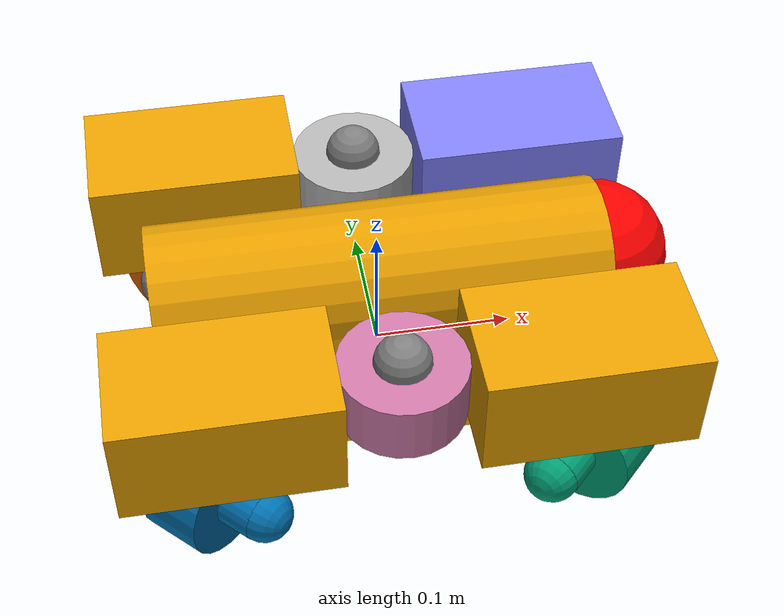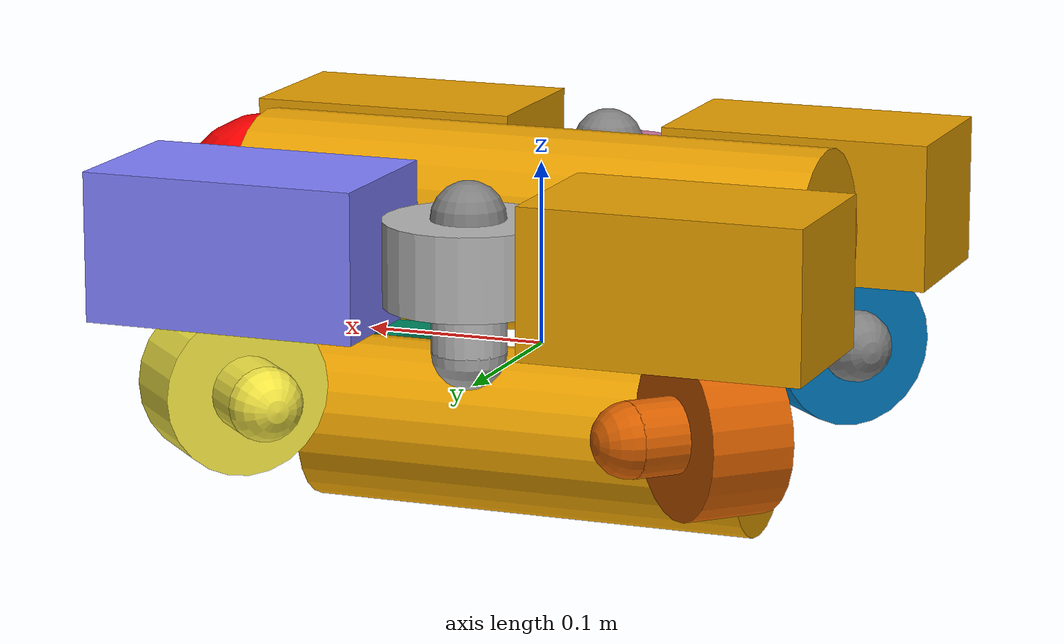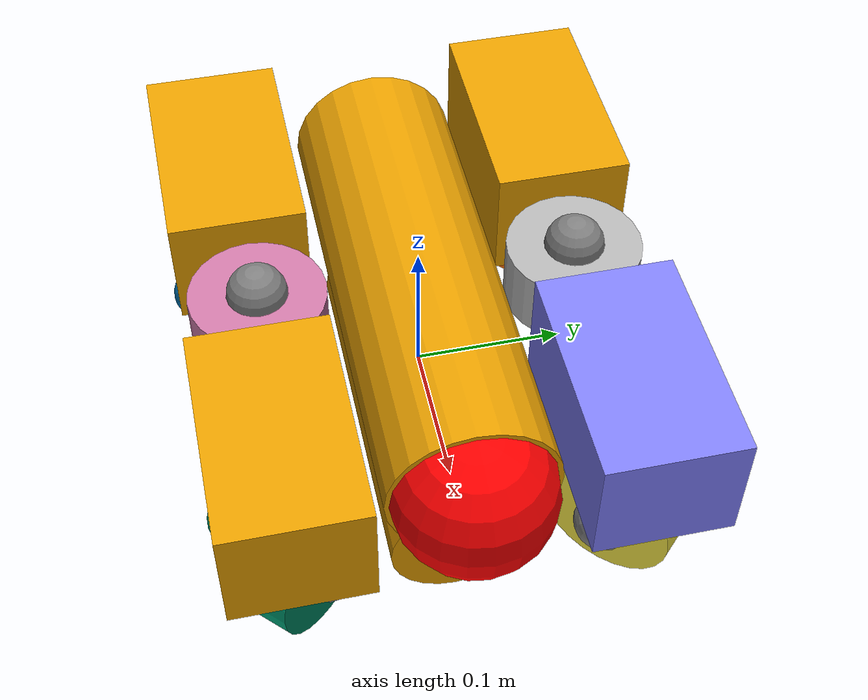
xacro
<?xml version="1.0"?>

<!--
  Hardware build for pool test #2
-->

<robot name="orca" xmlns:xacro="http://ros.org/wiki/xacro">

  <!-- Orca constants -->
  <xacro:property name="TOTAL_MASS" value="10"/>
  <xacro:property name="TOTAL_VOLUME" value="0.01"/>
  <xacro:property name="LENGTH" value="0.457"/>
  <xacro:property name="WIDTH" value="0.338"/>
  <xacro:property name="HEIGHT" value="0.254"/>
  <xacro:property name="IXX" value="${TOTAL_MASS / 12 * (WIDTH * WIDTH + HEIGHT * HEIGHT)}"/>
  <xacro:property name="IYY" value="${TOTAL_MASS / 12 * (LENGTH * LENGTH + HEIGHT * HEIGHT)}"/>
  <xacro:property name="IZZ" value="${TOTAL_MASS / 12 * (LENGTH * LENGTH + WIDTH * WIDTH)}"/>
  <xacro:property name="FLOAT_X" value="0.12"/>
  <xacro:property name="FLOAT_Y" value="0.11"/>
  <xacro:property name="FLOAT_Z" value="0.07"/>
  <xacro:property name="THRUSTER_X" value="0.15"/>
  <xacro:property name="THRUSTER_Y" value="0.09"/>
  <xacro:property name="THRUSTER_Z" value="-0.009"/>
  <xacro:property name="VERT_THRUSTER_Y" value="0.105"/>
  <xacro:property name="VERT_THRUSTER_Z" value="0.09"/>
  <xacro:property name="MASS_Z" value="0.011"/>
  <xacro:property name="FORWARD_FORCE" value="50"/>
  <xacro:property name="REVERSE_FORCE" value="40"/>
  <xacro:property name="HAS_TETHER" default="false"/>
  <xacro:property name="SURFACE" default="0"/>

  <!-- Physics properties -->
  <xacro:property name="FLUID_DENSITY" value="997"/>
  <xacro:property name="DISPLACED_MASS" value="${TOTAL_VOLUME*FLUID_DENSITY}"/>

  <!-- General constants -->
  <xacro:property name="PI" value="3.1415926535897931"/>

  <!-- Materials -->
  <material name="gray"><color rgba="0.5 0.5 0.5 1.0"/></material>
  <material name="blue"><color rgba="0.5 0.5 1.0 1.0"/></material>
  <material name="red"><color rgba="1.0 0.0 0.0 1.0"/></material>

  <!-- Thruster origins -->
  <xacro:property name="front_right_origin">
    <origin xyz="${THRUSTER_X} ${-THRUSTER_Y} ${THRUSTER_Z}" rpy="0 ${PI/2} ${PI/4}"/>
  </xacro:property>
  <xacro:property name="front_left_origin">
    <origin xyz="${THRUSTER_X} ${THRUSTER_Y} ${THRUSTER_Z}" rpy="0 ${PI/2} ${-PI/4}"/>
  </xacro:property>
  <xacro:property name="rear_right_origin">
    <origin xyz="${-THRUSTER_X} ${-THRUSTER_Y} ${THRUSTER_Z}" rpy="0 ${PI/2} ${PI*3/4}"/>
  </xacro:property>
  <xacro:property name="rear_left_origin">
    <origin xyz="${-THRUSTER_X} ${THRUSTER_Y} ${THRUSTER_Z}" rpy="0 ${PI/2} ${-PI*3/4}"/>
  </xacro:property>
  <xacro:property name="vertical_right_origin">
    <origin xyz="0 ${-VERT_THRUSTER_Y} ${VERT_THRUSTER_Z}" rpy="0 0 0"/>
  </xacro:property>
  <xacro:property name="vertical_left_origin">
    <origin xyz="0 ${VERT_THRUSTER_Y} ${VERT_THRUSTER_Z}" rpy="0 0 0"/>
  </xacro:property>

  <!-- Thruster macro -->
  <xacro:macro name="t200" params="name *origin">
    <link name="t200_link_${name}">
      <!-- Front cone -->
      <visual>
        <origin xyz="0 0 0"/>
        <geometry><sphere radius="0.02"/></geometry>
        <material name="gray"/> <!-- All visual elements in this link pick up this material -->
      </visual>
      <!-- Rear cone -->
      <visual>
        <origin xyz="0 0 -0.07"/>
        <geometry><sphere radius="0.02"/></geometry>
      </visual>
      <!-- Thruster body -->
      <visual>
        <origin xyz="0 0 -0.035"/>
        <geometry><cylinder length="0.07" radius="0.02"/></geometry>
      </visual>
      <!-- Propeller guard -->
      <visual>
        <origin xyz="0 0 -0.0225"/>
        <geometry><cylinder length="0.045" radius="0.045"/></geometry>
      </visual>
    </link>
    <joint name="t200_joint_${name}" type="fixed">
      <xacro:insert_block name="origin" />
      <parent link="base_link"/>
      <child link="t200_link_${name}"/>
    </joint>
  </xacro:macro>

  <!-- Base link -->
  <link name="base_link">
    <!-- Inertial -->
    <inertial>
      <origin xyz="0 0 ${MASS_Z}"/> <!-- Center of mass -->
      <mass value="${TOTAL_MASS}"/>
      <inertia ixx="${IXX}" ixy="0.0" ixz="0.0" iyy="${IYY}" iyz="0.0" izz="${IZZ}"/>
    </inertial>
    <!-- Float -->
    <visual>
      <origin xyz="${FLOAT_X} ${FLOAT_Y} ${FLOAT_Z}"/>
      <geometry><box size="0.15 0.09 0.08"/></geometry>
      <material name="blue"/>
    </visual>
    <!-- Float -->
    <visual>
      <origin xyz="${FLOAT_X} ${-FLOAT_Y} ${FLOAT_Z}"/>
      <geometry><box size="0.15 0.09 0.08"/></geometry>
    </visual>
    <!-- Float -->
    <visual>
      <origin xyz="${-FLOAT_X} ${FLOAT_Y} ${FLOAT_Z}"/>
      <geometry><box size="0.15 0.09 0.08"/></geometry>
    </visual>
    <!-- Float -->
    <visual>
      <origin xyz="${-FLOAT_X} ${-FLOAT_Y} ${FLOAT_Z}"/>
      <geometry><box size="0.15 0.09 0.08"/></geometry>
    </visual>
    <!-- Electronics tube -->
    <visual>
      <origin xyz="0 0 0.063" rpy="0 ${PI/2} 0"/>
      <geometry><cylinder length="0.32" radius="0.055"/></geometry>
    </visual>
    <!-- Battery tube -->
    <visual>
      <origin xyz="0 0 -0.05" rpy="0 ${PI/2} 0"/>
      <geometry><cylinder length="0.25" radius="0.045"/></geometry>
    </visual>
    <!-- Collision region -->
    <collision>
      <geometry><box size="${LENGTH} ${WIDTH} ${HEIGHT}"/></geometry>
    </collision>
  </link>

  <!-- Forward camera link -->
  <link name="forward_camera_link">
    <!-- Camera hemisphere -->
    <visual>
      <origin xyz="0 0 0" rpy="0 0 0"/>
      <geometry><sphere radius="0.052"/></geometry>
      <material name="red"/>
    </visual>
  </link>

  <!-- Attach forward_camera_link to base_link -->
  <joint name="forward_camera_link_joint" type="fixed">
    <origin xyz="0.16 0 0.063" rpy="0 0 0"/>
    <parent link="base_link"/>
    <child link="forward_camera_link"/>
  </joint>

<!--  &lt;!&ndash; Forward camera frame &ndash;&gt;-->

<!--  &lt;!&ndash; Attach forward_camera_frame to forward_camera_link &ndash;&gt;-->

  <!-- Attach thrusters to the base_link -->
  <xacro:t200 name="front_right">
    <xacro:insert_block name="front_right_origin"/>
  </xacro:t200>
  <xacro:t200 name="front_left">
    <xacro:insert_block name="front_left_origin"/>
  </xacro:t200>
  <xacro:t200 name="rear_right">
    <xacro:insert_block name="rear_right_origin"/>
  </xacro:t200>
  <xacro:t200 name="rear_left">
    <xacro:insert_block name="rear_left_origin"/>
  </xacro:t200>
  <xacro:t200 name="vertical_right">
    <xacro:insert_block name="vertical_right_origin"/>
  </xacro:t200>
  <xacro:t200 name="vertical_left">
    <xacro:insert_block name="vertical_left_origin"/>
  </xacro:t200>

  <!--
    The OrcaBuoyancyPlugin applies a force that counteracts gravity.
    Buoyancy force is not applied if the link is above the surface of the water.
  -->
  <gazebo>
    <plugin name="OrcaBuoyancyPlugin" filename="libOrcaBuoyancyPlugin.so">
      <fluid_density>${FLUID_DENSITY}</fluid_density>
      <link name="base_link">
        <center_of_volume>0 0 0.06</center_of_volume>
        <volume>${TOTAL_VOLUME}</volume>
      </link>
    </plugin>
  </gazebo>

  <!--
  The OrcaDragPlugin applies a drag force proportional to velocity^2.
  -->
  <gazebo>
    <plugin name="OrcaDragPlugin" filename="libOrcaDragPlugin.so">
      <link name="base_link">
        <center_of_mass>0 0 ${MASS_Z}</center_of_mass>
        <tether_attach>-0.25 0 ${THRUSTER_Z}</tether_attach>
        <xacro:unless value="${HAS_TETHER}">
          <tether_drag>0</tether_drag>
        </xacro:unless>
      </link>
    </plugin>
  </gazebo>

  <gazebo>
    <plugin name="OrcaThrusterPlugin" filename="libOrcaThrusterPlugin.so">
      <link_name>orca::base_link</link_name>
      <thruster name="front_right"> <!-- name attributes are ignored; the tag order must match the message array order -->
        <pos_force>${FORWARD_FORCE}</pos_force> <!-- units are N, positive for ccw, negative for cw -->
        <neg_force>${REVERSE_FORCE}</neg_force> <!-- units are N, positive for ccw, negative for cw -->
        <xacro:insert_block name="front_right_origin"/>
      </thruster>
      <thruster name="front_left">
        <pos_force>${FORWARD_FORCE}</pos_force>
        <neg_force>${REVERSE_FORCE}</neg_force>
        <xacro:insert_block name="front_left_origin"/>
      </thruster>
      <thruster name="rear_right">
        <pos_force>${-REVERSE_FORCE}</pos_force>
        <neg_force>${-FORWARD_FORCE}</neg_force>
        <xacro:insert_block name="rear_right_origin"/>
      </thruster>
      <thruster name="rear_left">
        <pos_force>${-REVERSE_FORCE}</pos_force>
        <neg_force>${-FORWARD_FORCE}</neg_force>
        <xacro:insert_block name="rear_left_origin"/>
      </thruster>
      <thruster name="vertical_right">
        <pos_force>${FORWARD_FORCE}</pos_force>
        <neg_force>${REVERSE_FORCE}</neg_force>
        <xacro:insert_block name="vertical_right_origin"/>
      </thruster>
      <thruster name="vertical_left">
        <pos_force>${-REVERSE_FORCE}</pos_force>
        <neg_force>${-FORWARD_FORCE}</neg_force>
        <xacro:insert_block name="vertical_left_origin"/>
      </thruster>
    </plugin>
  </gazebo>

  <!--
    The OrcaBarometerPlugin (wraps a Gazebo altimeter sensor) simulates a barometer sensor such as the BlueRobotics Bar30.
  -->
  <gazebo reference="base_link">
    <sensor name="barometer_sensor" type="altimeter">
      <update_rate>10</update_rate> <!-- Match orca_driver rate -->
      <plugin name="OrcaBarometerPlugin" filename="libOrcaBarometerPlugin.so">
        <fluid_density>${FLUID_DENSITY}</fluid_density>
      </plugin>
    </sensor>
  </gazebo>

  <!--
    The camera_controller plugin (wraps a Gazebo camera sensor) simulates a camera driver.
    Forward-facing camera driver:
  -->
  <gazebo reference="forward_camera_link">
    <sensor type="camera" name="forward_camera">
      <update_rate>30.0</update_rate>
      <camera name="head">
        <horizontal_fov>1.4</horizontal_fov>
        <image>
          <width>800</width>
          <height>600</height>
          <format>R8G8B8</format>
        </image>
        <clip>
          <near>0.02</near>
          <far>300</far>
        </clip>
        <noise>
          <type>gaussian</type>
          <!-- Noise is sampled independently per pixel on each frame.
               That pixel's noise value is added to each of its color
               channels, which at that point lie in the range [0,1]. -->
          <mean>0.0</mean>
          <stddev>0.007</stddev>
        </noise>
      </camera>
      <plugin name="camera_controller" filename="libgazebo_ros_camera.so">
        <alwaysOn>true</alwaysOn>
        <updateRate>0.0</updateRate>
        <cameraName>orca/forward_camera</cameraName>
        <imageTopicName>image_raw</imageTopicName>
        <cameraInfoTopicName>camera_info</cameraInfoTopicName>
        <frameName>forward_camera_link</frameName>
        <hackBaseline>0.07</hackBaseline>
        <distortionK1>0.0</distortionK1>
        <distortionK2>0.0</distortionK2>
        <distortionK3>0.0</distortionK3>
        <distortionT1>0.0</distortionT1>
        <distortionT2>0.0</distortionT2>
      </plugin>
    </sensor>
  </gazebo>

</robot>
